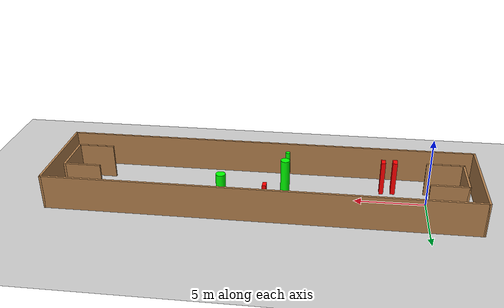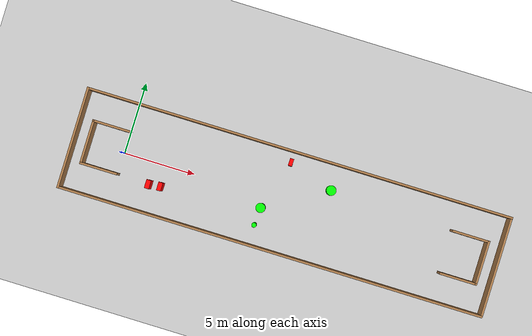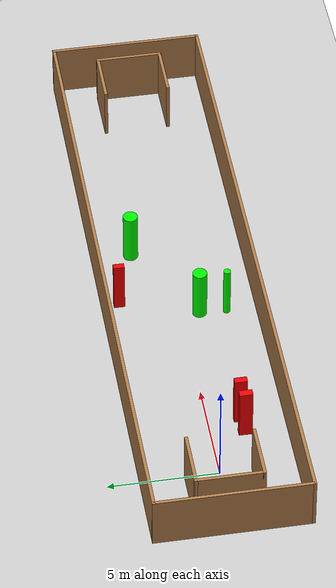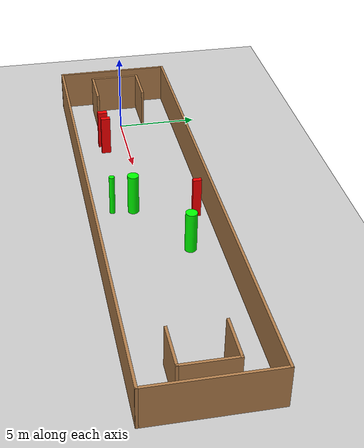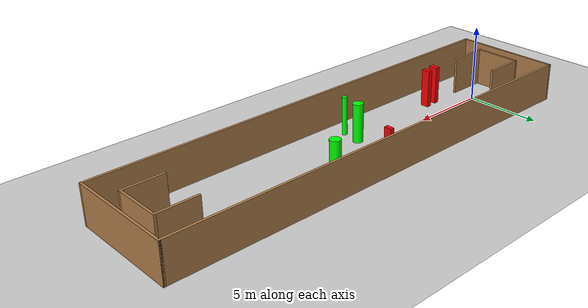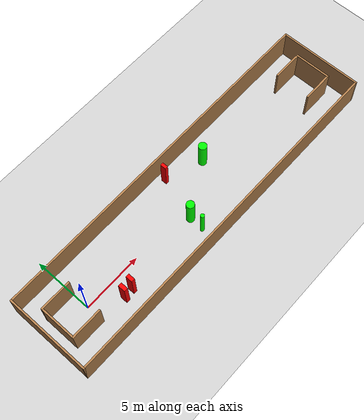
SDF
<sdf version="1.7">
 <world name="default">
  <light name="sun" type="directional">
   <pose>0 0 10 0 -0 0</pose>
   <diffuse>0.8 0.8 0.8 1</diffuse>
   <specular>0.2 0.2 0.2 1</specular>
   <attenuation>
    <range>1000</range>
    <constant>0.9</constant>
    <linear>0.01</linear>
    <quadratic>0.001</quadratic>
   </attenuation>
   <direction>-0.5 0.1 -0.9</direction>
   <spot><inner_angle>0</inner_angle><outer_angle>0</outer_angle><falloff>0</falloff></spot>
  </light>
  <model name="ground_plane">
   <static>1</static>
   <link name="link">
    <collision name="collision">
     <geometry><plane><normal>0 0 1</normal><size>100 100</size></plane></geometry>
     <surface>
      <contact><collide_bitmask>65535</collide_bitmask></contact>
      <friction><ode><mu>100</mu><mu2>50</mu2></ode></friction>
     </surface>
    </collision>
    <visual name="visual">
     <cast_shadows>0</cast_shadows>
     <geometry><plane><normal>0 0 1</normal><size>100 100</size></plane></geometry>
     <material>
      <script><uri>file://media/materials/scripts/gazebo.material</uri><name>Gazebo/Grey</name></script>
     </material>
    </visual>
   </link>
  </model>
  <gravity>0 0 -9.8</gravity>
  <magnetic_field>6e-06 2.3e-05 -4.2e-05</magnetic_field>
  <atmosphere type="adiabatic"/>
  <physics type="ode">
   <max_step_size>0.001</max_step_size>
   <real_time_factor>1</real_time_factor>
   <real_time_update_rate>1000</real_time_update_rate>
  </physics>
  <scene><ambient>0.4 0.4 0.4 1</ambient><background>0.7 0.7 0.7 1</background><shadows>1</shadows></scene>
  <spherical_coordinates>
   <surface_model>EARTH_WGS84</surface_model>
   <latitude_deg>0</latitude_deg>
   <longitude_deg>0</longitude_deg>
   <elevation>0</elevation>
   <heading_deg>0</heading_deg>
  </spherical_coordinates>
  <model name="my_base_walls">
   <link name="Wall_0">
    <collision name="Wall_0_Collision">
     <geometry><box><size>7.15 0.15 2.5</size></box></geometry>
     <pose>0 0 1.25 0 -0 0</pose>
    </collision>
    <visual name="Wall_0_Visual">
     <pose>0 0 1.25 0 -0 0</pose>
     <geometry><box><size>7.15 0.15 2.5</size></box></geometry>
     <material>
      <script><uri>file://media/materials/scripts/gazebo.material</uri><name>Gazebo/Wood</name></script>
      <ambient>1 1 1 1</ambient>
     </material>
     <meta><layer>0</layer></meta>
    </visual>
    <pose>-15 0 0 0 -0 1.5708</pose>
   </link>
   <link name="Wall_10">
    <collision name="Wall_10_Collision">
     <geometry><box><size>2.65 0.15 2.5</size></box></geometry>
     <pose>0 0 1.25 0 -0 0</pose>
    </collision>
    <visual name="Wall_10_Visual">
     <pose>0 0 1.25 0 -0 0</pose>
     <geometry><box><size>2.65 0.15 2.5</size></box></geometry>
     <material>
      <script><uri>file://media/materials/scripts/gazebo.material</uri><name>Gazebo/Wood</name></script>
      <ambient>1 1 1 1</ambient>
     </material>
     <meta><layer>0</layer></meta>
    </visual>
    <pose>-12.75 -1.5 0 0 -0 0</pose>
   </link>
   <link name="Wall_12">
    <collision name="Wall_12_Collision">
     <geometry><box><size>2.65 0.15 2.5</size></box></geometry>
     <pose>0 0 1.25 0 -0 0</pose>
    </collision>
    <visual name="Wall_12_Visual">
     <pose>0 0 1.25 0 -0 0</pose>
     <geometry><box><size>2.65 0.15 2.5</size></box></geometry>
     <material>
      <script><uri>file://media/materials/scripts/gazebo.material</uri><name>Gazebo/Wood</name></script>
      <ambient>1 1 1 1</ambient>
     </material>
     <meta><layer>0</layer></meta>
    </visual>
    <pose>-12.75 1.5 0 0 -0 0</pose>
   </link>
   <link name="Wall_14">
    <collision name="Wall_14_Collision">
     <geometry><box><size>3.15 0.15 2.5</size></box></geometry>
     <pose>0 0 1.25 0 -0 0</pose>
    </collision>
    <visual name="Wall_14_Visual">
     <pose>0 0 1.25 0 -0 0</pose>
     <geometry><box><size>3.15 0.15 2.5</size></box></geometry>
     <material>
      <script><uri>file://media/materials/scripts/gazebo.material</uri><name>Gazebo/Wood</name></script>
      <ambient>1 1 1 1</ambient>
     </material>
     <meta><layer>0</layer></meta>
    </visual>
    <pose>14 0 0 0 -0 -1.5708</pose>
   </link>
   <link name="Wall_15">
    <collision name="Wall_15_Collision">
     <geometry><box><size>2.65 0.15 2.5</size></box></geometry>
     <pose>0 0 1.25 0 -0 0</pose>
    </collision>
    <visual name="Wall_15_Visual">
     <pose>0 0 1.25 0 -0 0</pose>
     <geometry><box><size>2.65 0.15 2.5</size></box></geometry>
     <material>
      <script><uri>file://media/materials/scripts/gazebo.material</uri><name>Gazebo/Wood</name></script>
      <ambient>1 1 1 1</ambient>
     </material>
     <meta><layer>0</layer></meta>
    </visual>
    <pose>12.75 -1.5 0 0 -0 3.14159</pose>
   </link>
   <link name="Wall_17">
    <collision name="Wall_17_Collision">
     <geometry><box><size>2.65 0.15 2.5</size></box></geometry>
     <pose>0 0 1.25 0 -0 0</pose>
    </collision>
    <visual name="Wall_17_Visual">
     <pose>0 0 1.25 0 -0 0</pose>
     <geometry><box><size>2.65 0.15 2.5</size></box></geometry>
     <material>
      <script><uri>file://media/materials/scripts/gazebo.material</uri><name>Gazebo/Wood</name></script>
      <ambient>1 1 1 1</ambient>
     </material>
     <meta><layer>0</layer></meta>
    </visual>
    <pose>12.75 1.5 0 0 -0 3.14159</pose>
   </link>
   <link name="Wall_2">
    <collision name="Wall_2_Collision">
     <geometry><box><size>30.15 0.15 2.5</size></box></geometry>
     <pose>0 0 1.25 0 -0 0</pose>
    </collision>
    <visual name="Wall_2_Visual">
     <pose>0 0 1.25 0 -0 0</pose>
     <geometry><box><size>30.15 0.15 2.5</size></box></geometry>
     <material>
      <script><uri>file://media/materials/scripts/gazebo.material</uri><name>Gazebo/Wood</name></script>
      <ambient>1 1 1 1</ambient>
     </material>
     <meta><layer>0</layer></meta>
    </visual>
    <pose>-0 -3.5 0 0 -0 0</pose>
   </link>
   <link name="Wall_4">
    <collision name="Wall_4_Collision">
     <geometry><box><size>30.15 0.15 2.5</size></box></geometry>
     <pose>0 0 1.25 0 -0 0</pose>
    </collision>
    <visual name="Wall_4_Visual">
     <pose>0 0 1.25 0 -0 0</pose>
     <geometry><box><size>30.15 0.15 2.5</size></box></geometry>
     <material>
      <script><uri>file://media/materials/scripts/gazebo.material</uri><name>Gazebo/Wood</name></script>
      <ambient>1 1 1 1</ambient>
     </material>
     <meta><layer>0</layer></meta>
    </visual>
    <pose>-0 3.5 0 0 -0 0</pose>
   </link>
   <link name="Wall_6">
    <collision name="Wall_6_Collision">
     <geometry><box><size>7.15 0.15 2.5</size></box></geometry>
     <pose>0 0 1.25 0 -0 0</pose>
    </collision>
    <visual name="Wall_6_Visual">
     <pose>0 0 1.25 0 -0 0</pose>
     <geometry><box><size>7.15 0.15 2.5</size></box></geometry>
     <material>
      <script><uri>file://media/materials/scripts/gazebo.material</uri><name>Gazebo/Wood</name></script>
      <ambient>1 1 1 1</ambient>
     </material>
     <meta><layer>0</layer></meta>
    </visual>
    <pose>15 0 0 0 -0 -1.5708</pose>
   </link>
   <link name="Wall_9">
    <collision name="Wall_9_Collision">
     <geometry><box><size>3.15 0.15 2.5</size></box></geometry>
     <pose>0 0 1.25 0 -0 0</pose>
    </collision>
    <visual name="Wall_9_Visual">
     <pose>0 0 1.25 0 -0 0</pose>
     <geometry><box><size>3.15 0.15 2.5</size></box></geometry>
     <material>
      <script><uri>file://media/materials/scripts/gazebo.material</uri><name>Gazebo/Wood</name></script>
      <ambient>1 1 1 1</ambient>
     </material>
     <meta><layer>0</layer></meta>
    </visual>
    <pose>-14 0 0 0 -0 -1.5708</pose>
   </link>
   <static>1</static>
   <pose>11.5 0 0 0 -0 0</pose>
  </model>
  <model name="cylinder1">
   <static>1</static>
   <link name="link">
    <inertial>
     <mass>1</mass>
     <inertia><ixx>0.5</ixx><ixy>0</ixy><ixz>0</ixz><iyy>0.5</iyy><iyz>0</iyz><izz>1</izz></inertia>
    </inertial>
    <collision name="collision">
     <geometry><cylinder><radius>0.3413440012871485</radius><length>2.5</length></cylinder></geometry>
    </collision>
    <visual name="visual">
     <geometry><cylinder><radius>0.3413440012871485</radius><length>2.5</length></cylinder></geometry>
     <material>
      <ambient>0 1 0 1</ambient>
      <diffuse>0 1 0 1</diffuse>
      <specular>0.1 0.1 0.1 1</specular>
      <emissive>0 0 0 0</emissive>
     </material>
    </visual>
   </link>
   <pose>14.277865881943361 1.6964236683306684 1.25 0 0 0</pose>
  </model>
  <model name="cylinder2">
   <static>1</static>
   <link name="link">
    <inertial>
     <mass>1</mass>
     <inertia><ixx>0.5</ixx><ixy>0</ixy><ixz>0</ixz><iyy>0.5</iyy><iyz>0</iyz><izz>1</izz></inertia>
    </inertial>
    <collision name="collision">
     <geometry><cylinder><radius>0.33031516636975505</radius><length>2.5</length></cylinder></geometry>
    </collision>
    <visual name="visual">
     <geometry><cylinder><radius>0.33031516636975505</radius><length>2.5</length></cylinder></geometry>
     <material>
      <ambient>0 1 0 1</ambient>
      <diffuse>0 1 0 1</diffuse>
      <specular>0.1 0.1 0.1 1</specular>
      <emissive>0 0 0 0</emissive>
     </material>
    </visual>
   </link>
   <pose>10.039409367802044 -0.8339973783635068 1.25 0 0 0</pose>
  </model>
  <model name="cylinder3">
   <static>1</static>
   <link name="link">
    <inertial>
     <mass>1</mass>
     <inertia><ixx>0.5</ixx><ixy>0</ixy><ixz>0</ixz><iyy>0.5</iyy><iyz>0</iyz><izz>1</izz></inertia>
    </inertial>
    <collision name="collision">
     <geometry><cylinder><radius>0.16536124131961186</radius><length>2.5</length></cylinder></geometry>
    </collision>
    <visual name="visual">
     <geometry><cylinder><radius>0.16536124131961186</radius><length>2.5</length></cylinder></geometry>
     <material>
      <ambient>0 1 0 1</ambient>
      <diffuse>0 1 0 1</diffuse>
      <specular>0.1 0.1 0.1 1</specular>
      <emissive>0 0 0 0</emissive>
     </material>
    </visual>
   </link>
   <pose>9.954921409027783 -2.0761172833294306 1.25 0 0 0</pose>
  </model>
  <model name="box1">
   <static>1</static>
   <link name="link">
    <inertial>
     <mass>1</mass>
     <inertia><ixx>0.083</ixx><ixy>0</ixy><ixz>0</ixz><iyy>0.083</iyy><iyz>0</iyz><izz>0.083</izz></inertia>
    </inertial>
    <collision name="collision">
     <geometry><box><size>0.3035209736713768 0.582221904735163 2.5</size></box></geometry>
    </collision>
    <visual name="visual">
     <geometry><box><size>0.3035209736713768 0.582221904735163 2.5</size></box></geometry>
     <material>
      <ambient>1 0 0 1</ambient>
      <diffuse>1 0 0 1</diffuse>
      <specular>0.1 0.1 0.1 1</specular>
      <emissive>0 0 0 0</emissive>
     </material>
    </visual>
    <sensor name="my_contact" type="contact">
     <contact><collision>box_collision</collision><topic>__default_topic__</topic></contact>
    </sensor>
   </link>
   <pose>3.0836603103067013 -1.4569404088420383 1.25 0 0 0</pose>
  </model>
  <model name="box2">
   <static>1</static>
   <link name="link">
    <inertial>
     <mass>1</mass>
     <inertia><ixx>0.083</ixx><ixy>0</ixy><ixz>0</ixz><iyy>0.083</iyy><iyz>0</iyz><izz>0.083</izz></inertia>
    </inertial>
    <collision name="collision">
     <geometry><box><size>0.3234823952770892 0.599907750482796 2.5</size></box></geometry>
    </collision>
    <visual name="visual">
     <geometry><box><size>0.3234823952770892 0.599907750482796 2.5</size></box></geometry>
     <material>
      <ambient>1 0 0 1</ambient>
      <diffuse>1 0 0 1</diffuse>
      <specular>0.1 0.1 0.1 1</specular>
      <emissive>0 0 0 0</emissive>
     </material>
    </visual>
    <sensor name="my_contact" type="contact">
     <contact><collision>box_collision</collision><topic>__default_topic__</topic></contact>
    </sensor>
   </link>
   <pose>2.2637678560314693 -1.5427402625546955 1.25 0 0 0</pose>
  </model>
  <model name="box3">
   <static>1</static>
   <link name="link">
    <inertial>
     <mass>1</mass>
     <inertia><ixx>0.083</ixx><ixy>0</ixy><ixz>0</ixz><iyy>0.083</iyy><iyz>0</iyz><izz>0.083</izz></inertia>
    </inertial>
    <collision name="collision">
     <geometry><box><size>0.2703010715425231 0.4986612642737972 2.5</size></box></geometry>
    </collision>
    <visual name="visual">
     <geometry><box><size>0.2703010715425231 0.4986612642737972 2.5</size></box></geometry>
     <material>
      <ambient>1 0 0 1</ambient>
      <diffuse>1 0 0 1</diffuse>
      <specular>0.1 0.1 0.1 1</specular>
      <emissive>0 0 0 0</emissive>
     </material>
    </visual>
    <sensor name="my_contact" type="contact">
     <contact><collision>box_collision</collision><topic>__default_topic__</topic></contact>
    </sensor>
   </link>
   <pose>11.112452418811253 2.728864021017789 1.25 0 0 0</pose>
  </model>
 </world>
</sdf>
